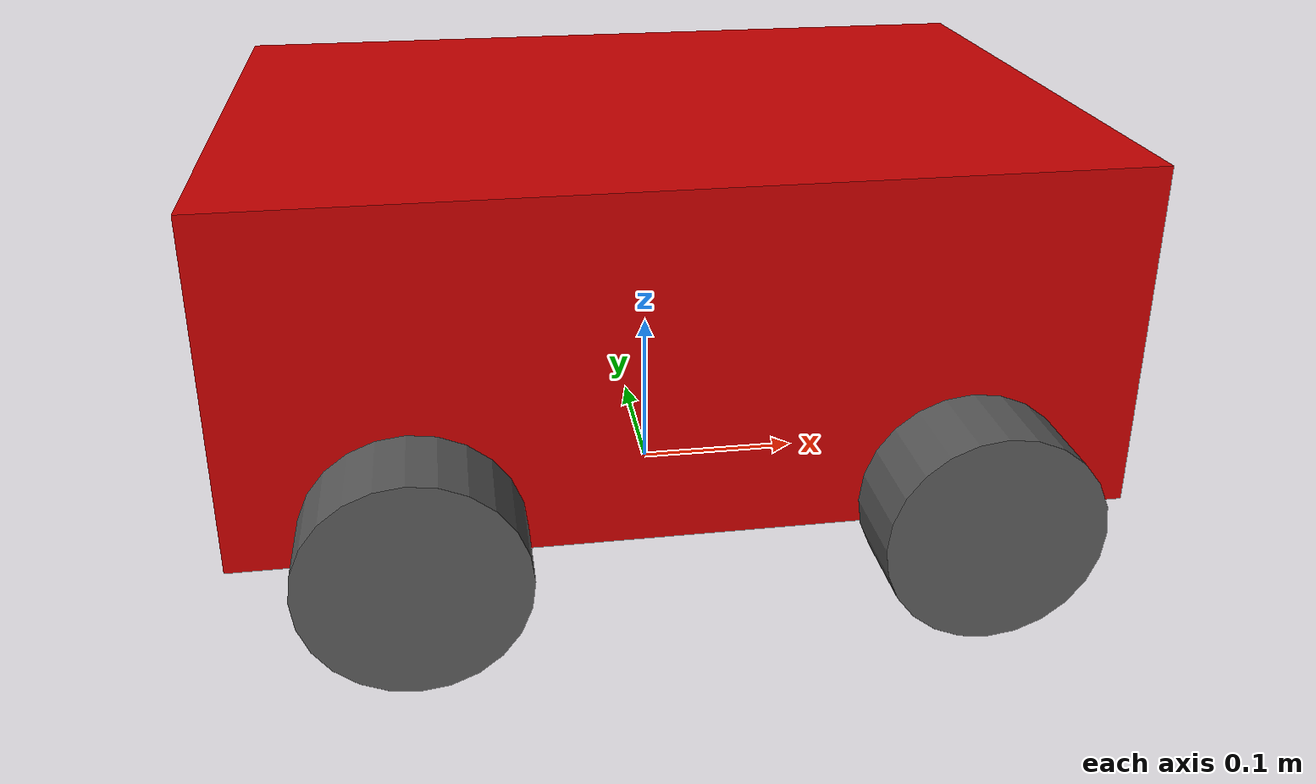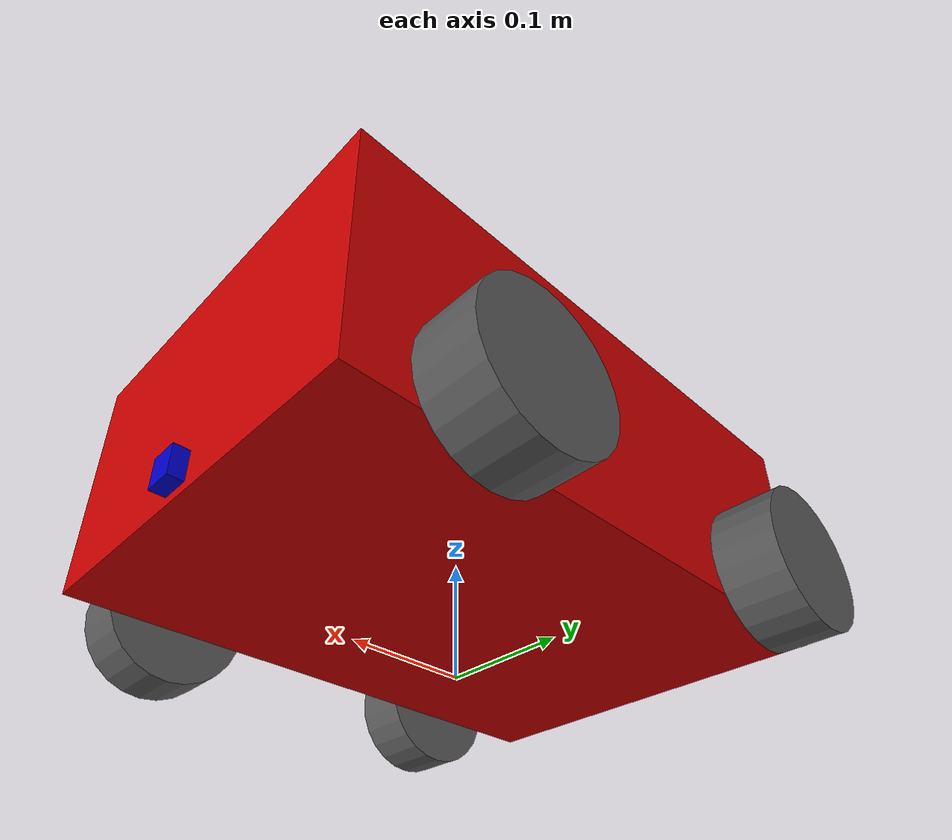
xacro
<?xml version="1.0"?>
<robot name="robot" xmlns:xacro="http://www.ros.org/wiki/xacro">

  <link name="base_footprint" />

  <link name="base_link">
    <visual>
      <geometry>
        <box size="0.5 0.35 0.2" />
      </geometry>
      <material name="red">
        <color rgba="0.8 0.0 0.0 1.0" />
      </material>
    </visual>
  </link>

  <joint name="base" type="fixed">
    <parent link="base_footprint" />
    <child link="base_link" />
    <origin xyz="0 0 0.15" />
  </joint>

  <xacro:macro name="wheel" params="prefix xreflect yreflect">
    <link name="${prefix}_wheel_link">
      <visual>
        <origin xyz="0 0 0" rpy="${pi/2} 0 0" />
        <geometry>
          <cylinder length="0.05" radius="0.06" />
        </geometry>
        <material name="gray">
          <color rgba="0.35 0.35 0.35 1.0" />
        </material>
      </visual>
    </link>

    <joint name="${prefix}_wheel" type="fixed">
      <parent link="base_link" />
      <child link="${prefix}_wheel_link" />
      <origin xyz="${xreflect*0.15} ${yreflect*0.21} -0.08" />
    </joint>
  </xacro:macro>

  <xacro:wheel prefix="front_left" xreflect="1" yreflect="1" />
  <xacro:wheel prefix="front_right" xreflect="1" yreflect="-1" />
  <xacro:wheel prefix="rear_left" xreflect="-1" yreflect="1" />
  <xacro:wheel prefix="rear_right" xreflect="-1" yreflect="-1" />

  <xacro:macro name="sonar" params="prefix reflect yaw:=0.0">
    <link name="${prefix}_sonar_link">
      <visual>
        <geometry>
          <box size="0.025 0.025 0.025" />
        </geometry>
        <material name="blue">
          <color rgba="0.0 0.0 0.8 1.0" />
        </material>
      </visual>
    </link>

    <joint name="${prefix}_wheel" type="fixed">
      <parent link="base_link" />
      <child link="${prefix}_sonar_link" />
      <origin xyz="${reflect*0.25} 0.0 -0.08" rpy="0.0 0.0 ${yaw}" />
    </joint>
  </xacro:macro>

  <xacro:sonar prefix="front" reflect="1" />
  <xacro:sonar prefix="rear" reflect="-1" yaw="${pi}" />

  <link name="imu_link" />

  <joint name="imu" type="fixed">
    <parent link="base_link" />
    <child link="imu_link" />
    <origin xyz="0.0 0.0 0.01" />
  </joint>

</robot>
